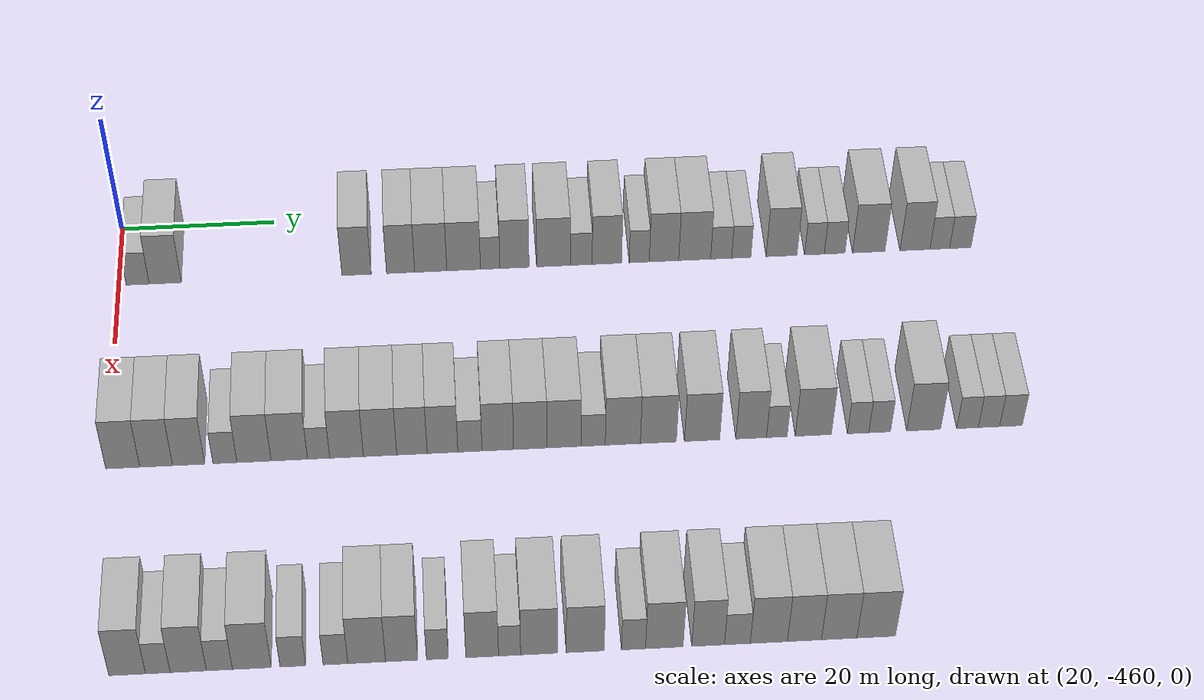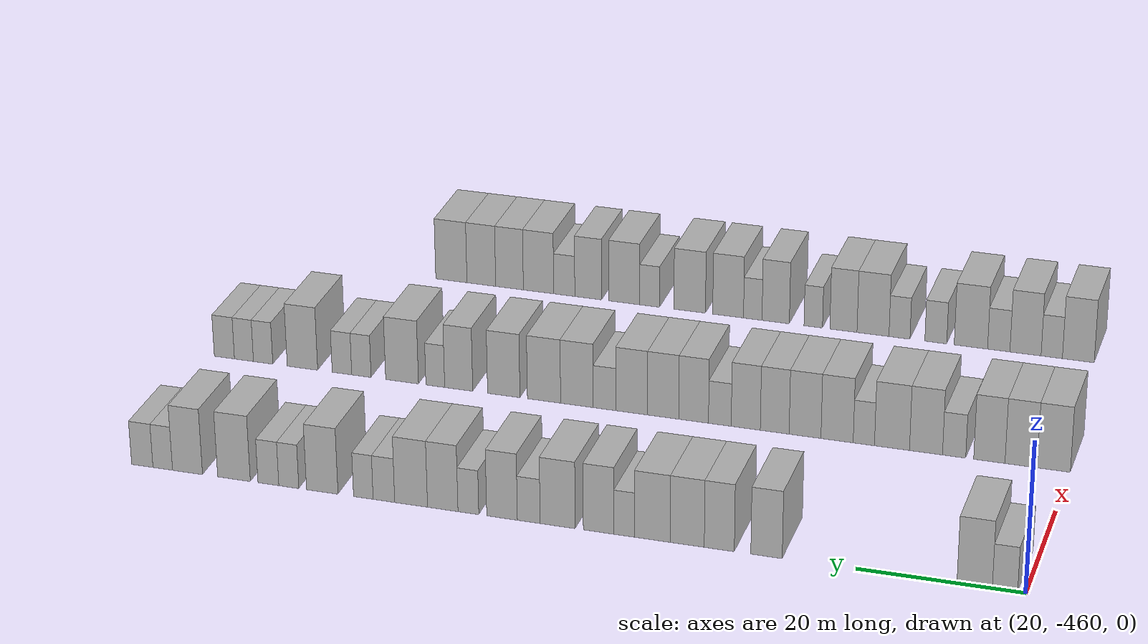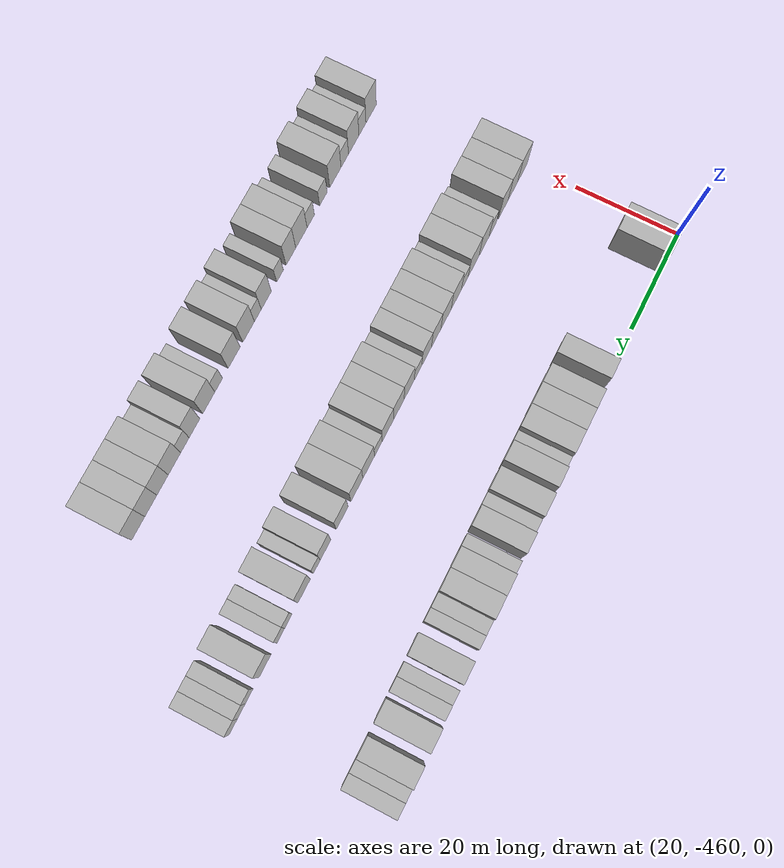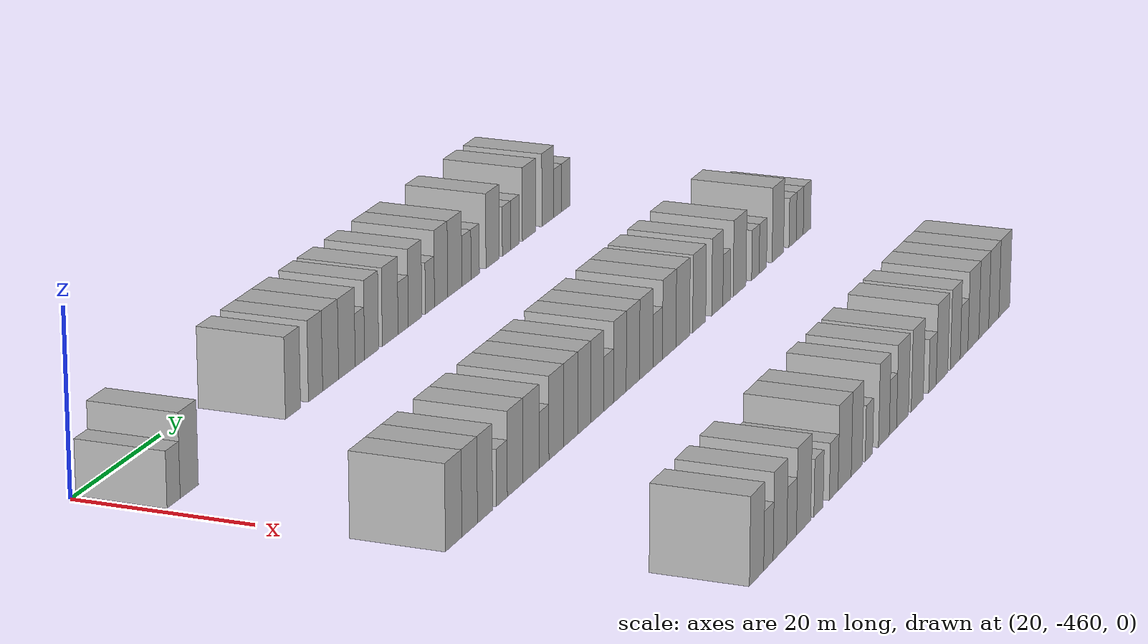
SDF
<sdf version="1.6">
 <world name="default">
  <model name="building_1">
   <static>1</static>
   <pose>25.0000 -457.5203 0 0.000000 0.000000 0.000000</pose>
   <link name="link">
    <pose>0 0 3.00 0 0 0</pose>
    <collision name="collision"><geometry><box><size>10.0000 2.9594 6.0000</size></box></geometry></collision>
    <visual name="visual">
     <cast_shadows>0</cast_shadows>
     <geometry><box><size>10.0000 2.9594 6.0000</size></box></geometry>
     <material>
      <script>
       <uri>model://HANNAS_wall/materials/scripts</uri>
       <uri>model://HANNAS_wall/materials/textures</uri>
       <name>vrc/HANNAS_wall</name>
      </script>
     </material>
    </visual>
   </link>
  </model>
  <model name="building_2">
   <static>1</static>
   <pose>25.0000 -453.9683 0 0.000000 0.000000 0.000000</pose>
   <link name="link">
    <pose>0 0 4.50 0 0 0</pose>
    <collision name="collision"><geometry><box><size>10.0000 4.1446 9.0000</size></box></geometry></collision>
    <visual name="visual">
     <cast_shadows>0</cast_shadows>
     <geometry><box><size>10.0000 4.1446 9.0000</size></box></geometry>
     <material>
      <script>
       <uri>model://HANNAS_wall/materials/scripts</uri>
       <uri>model://HANNAS_wall/materials/textures</uri>
       <name>vrc/HANNAS_wall</name>
      </script>
     </material>
    </visual>
   </link>
  </model>
  <model name="building_3">
   <static>1</static>
   <pose>25.0000 -429.2028 0 0.000000 0.000000 0.000000</pose>
   <link name="link">
    <pose>0 0 4.50 0 0 0</pose>
    <collision name="collision"><geometry><box><size>10.0000 3.7955 9.0000</size></box></geometry></collision>
    <visual name="visual">
     <cast_shadows>0</cast_shadows>
     <geometry><box><size>10.0000 3.7955 9.0000</size></box></geometry>
     <material>
      <script>
       <uri>model://HANNAS_wall/materials/scripts</uri>
       <uri>model://HANNAS_wall/materials/textures</uri>
       <name>vrc/HANNAS_wall</name>
      </script>
     </material>
    </visual>
   </link>
  </model>
  <model name="building_4">
   <static>1</static>
   <pose>25.0000 -423.4766 0 0.000000 0.000000 0.000000</pose>
   <link name="link">
    <pose>0 0 4.50 0 0 0</pose>
    <collision name="collision"><geometry><box><size>10.0000 3.6569 9.0000</size></box></geometry></collision>
    <visual name="visual">
     <cast_shadows>0</cast_shadows>
     <geometry><box><size>10.0000 3.6569 9.0000</size></box></geometry>
     <material>
      <script>
       <uri>model://HANNAS_wall/materials/scripts</uri>
       <uri>model://HANNAS_wall/materials/textures</uri>
       <name>vrc/HANNAS_wall</name>
      </script>
     </material>
    </visual>
   </link>
  </model>
  <model name="building_5">
   <static>1</static>
   <pose>25.0000 -419.5611 0 0.000000 0.000000 0.000000</pose>
   <link name="link">
    <pose>0 0 4.50 0 0 0</pose>
    <collision name="collision"><geometry><box><size>10.0000 4.1742 9.0000</size></box></geometry></collision>
    <visual name="visual">
     <cast_shadows>0</cast_shadows>
     <geometry><box><size>10.0000 4.1742 9.0000</size></box></geometry>
     <material>
      <script>
       <uri>model://HANNAS_wall/materials/scripts</uri>
       <uri>model://HANNAS_wall/materials/textures</uri>
       <name>vrc/HANNAS_wall</name>
      </script>
     </material>
    </visual>
   </link>
  </model>
  <model name="building_6">
   <static>1</static>
   <pose>25.0000 -415.2836 0 0.000000 0.000000 0.000000</pose>
   <link name="link">
    <pose>0 0 4.50 0 0 0</pose>
    <collision name="collision"><geometry><box><size>10.0000 4.3807 9.0000</size></box></geometry></collision>
    <visual name="visual">
     <cast_shadows>0</cast_shadows>
     <geometry><box><size>10.0000 4.3807 9.0000</size></box></geometry>
     <material>
      <script>
       <uri>model://HANNAS_wall/materials/scripts</uri>
       <uri>model://HANNAS_wall/materials/textures</uri>
       <name>vrc/HANNAS_wall</name>
      </script>
     </material>
    </visual>
   </link>
  </model>
  <model name="building_7">
   <static>1</static>
   <pose>25.0000 -411.8322 0 0.000000 0.000000 0.000000</pose>
   <link name="link">
    <pose>0 0 3.00 0 0 0</pose>
    <collision name="collision"><geometry><box><size>10.0000 2.5221 6.0000</size></box></geometry></collision>
    <visual name="visual">
     <cast_shadows>0</cast_shadows>
     <geometry><box><size>10.0000 2.5221 6.0000</size></box></geometry>
     <material>
      <script>
       <uri>model://HANNAS_wall/materials/scripts</uri>
       <uri>model://HANNAS_wall/materials/textures</uri>
       <name>vrc/HANNAS_wall</name>
      </script>
     </material>
    </visual>
   </link>
  </model>
  <model name="building_8">
   <static>1</static>
   <pose>25.0000 -408.6667 0 0.000000 0.000000 0.000000</pose>
   <link name="link">
    <pose>0 0 4.50 0 0 0</pose>
    <collision name="collision"><geometry><box><size>10.0000 3.8089 9.0000</size></box></geometry></collision>
    <visual name="visual">
     <cast_shadows>0</cast_shadows>
     <geometry><box><size>10.0000 3.8089 9.0000</size></box></geometry>
     <material>
      <script>
       <uri>model://HANNAS_wall/materials/scripts</uri>
       <uri>model://HANNAS_wall/materials/textures</uri>
       <name>vrc/HANNAS_wall</name>
      </script>
     </material>
    </visual>
   </link>
  </model>
  <model name="building_9">
   <static>1</static>
   <pose>25.0000 -403.5743 0 0.000000 0.000000 0.000000</pose>
   <link name="link">
    <pose>0 0 4.50 0 0 0</pose>
    <collision name="collision"><geometry><box><size>10.0000 4.3760 9.0000</size></box></geometry></collision>
    <visual name="visual">
     <cast_shadows>0</cast_shadows>
     <geometry><box><size>10.0000 4.3760 9.0000</size></box></geometry>
     <material>
      <script>
       <uri>model://HANNAS_wall/materials/scripts</uri>
       <uri>model://HANNAS_wall/materials/textures</uri>
       <name>vrc/HANNAS_wall</name>
      </script>
     </material>
    </visual>
   </link>
  </model>
  <model name="building_10">
   <static>1</static>
   <pose>25.0000 -399.9592 0 0.000000 0.000000 0.000000</pose>
   <link name="link">
    <pose>0 0 3.00 0 0 0</pose>
    <collision name="collision"><geometry><box><size>10.0000 2.8542 6.0000</size></box></geometry></collision>
    <visual name="visual">
     <cast_shadows>0</cast_shadows>
     <geometry><box><size>10.0000 2.8542 6.0000</size></box></geometry>
     <material>
      <script>
       <uri>model://HANNAS_wall/materials/scripts</uri>
       <uri>model://HANNAS_wall/materials/textures</uri>
       <name>vrc/HANNAS_wall</name>
      </script>
     </material>
    </visual>
   </link>
  </model>
  <model name="building_11">
   <static>1</static>
   <pose>25.0000 -396.6053 0 0.000000 0.000000 0.000000</pose>
   <link name="link">
    <pose>0 0 4.50 0 0 0</pose>
    <collision name="collision"><geometry><box><size>10.0000 3.8536 9.0000</size></box></geometry></collision>
    <visual name="visual">
     <cast_shadows>0</cast_shadows>
     <geometry><box><size>10.0000 3.8536 9.0000</size></box></geometry>
     <material>
      <script>
       <uri>model://HANNAS_wall/materials/scripts</uri>
       <uri>model://HANNAS_wall/materials/textures</uri>
       <name>vrc/HANNAS_wall</name>
      </script>
     </material>
    </visual>
   </link>
  </model>
  <model name="building_12">
   <static>1</static>
   <pose>25.0000 -392.3631 0 0.000000 0.000000 0.000000</pose>
   <link name="link">
    <pose>0 0 3.00 0 0 0</pose>
    <collision name="collision"><geometry><box><size>10.0000 2.6307 6.0000</size></box></geometry></collision>
    <visual name="visual">
     <cast_shadows>0</cast_shadows>
     <geometry><box><size>10.0000 2.6307 6.0000</size></box></geometry>
     <material>
      <script>
       <uri>model://HANNAS_wall/materials/scripts</uri>
       <uri>model://HANNAS_wall/materials/textures</uri>
       <name>vrc/HANNAS_wall</name>
      </script>
     </material>
    </visual>
   </link>
  </model>
  <model name="building_13">
   <static>1</static>
   <pose>25.0000 -389.1165 0 0.000000 0.000000 0.000000</pose>
   <link name="link">
    <pose>0 0 4.50 0 0 0</pose>
    <collision name="collision"><geometry><box><size>10.0000 3.8625 9.0000</size></box></geometry></collision>
    <visual name="visual">
     <cast_shadows>0</cast_shadows>
     <geometry><box><size>10.0000 3.8625 9.0000</size></box></geometry>
     <material>
      <script>
       <uri>model://HANNAS_wall/materials/scripts</uri>
       <uri>model://HANNAS_wall/materials/textures</uri>
       <name>vrc/HANNAS_wall</name>
      </script>
     </material>
    </visual>
   </link>
  </model>
  <model name="building_14">
   <static>1</static>
   <pose>25.0000 -385.0935 0 0.000000 0.000000 0.000000</pose>
   <link name="link">
    <pose>0 0 4.50 0 0 0</pose>
    <collision name="collision"><geometry><box><size>10.0000 4.1836 9.0000</size></box></geometry></collision>
    <visual name="visual">
     <cast_shadows>0</cast_shadows>
     <geometry><box><size>10.0000 4.1836 9.0000</size></box></geometry>
     <material>
      <script>
       <uri>model://HANNAS_wall/materials/scripts</uri>
       <uri>model://HANNAS_wall/materials/textures</uri>
       <name>vrc/HANNAS_wall</name>
      </script>
     </material>
    </visual>
   </link>
  </model>
  <model name="building_15">
   <static>1</static>
   <pose>25.0000 -381.6193 0 0.000000 0.000000 0.000000</pose>
   <link name="link">
    <pose>0 0 3.00 0 0 0</pose>
    <collision name="collision"><geometry><box><size>10.0000 2.7649 6.0000</size></box></geometry></collision>
    <visual name="visual">
     <cast_shadows>0</cast_shadows>
     <geometry><box><size>10.0000 2.7649 6.0000</size></box></geometry>
     <material>
      <script>
       <uri>model://HANNAS_wall/materials/scripts</uri>
       <uri>model://HANNAS_wall/materials/textures</uri>
       <name>vrc/HANNAS_wall</name>
      </script>
     </material>
    </visual>
   </link>
  </model>
  <model name="building_16">
   <static>1</static>
   <pose>25.0000 -378.9802 0 0.000000 0.000000 0.000000</pose>
   <link name="link">
    <pose>0 0 3.00 0 0 0</pose>
    <collision name="collision"><geometry><box><size>10.0000 2.5133 6.0000</size></box></geometry></collision>
    <visual name="visual">
     <cast_shadows>0</cast_shadows>
     <geometry><box><size>10.0000 2.5133 6.0000</size></box></geometry>
     <material>
      <script>
       <uri>model://HANNAS_wall/materials/scripts</uri>
       <uri>model://HANNAS_wall/materials/textures</uri>
       <name>vrc/HANNAS_wall</name>
      </script>
     </material>
    </visual>
   </link>
  </model>
  <model name="building_17">
   <static>1</static>
   <pose>25.0000 -373.6902 0 0.000000 0.000000 0.000000</pose>
   <link name="link">
    <pose>0 0 4.50 0 0 0</pose>
    <collision name="collision"><geometry><box><size>10.0000 4.0668 9.0000</size></box></geometry></collision>
    <visual name="visual">
     <cast_shadows>0</cast_shadows>
     <geometry><box><size>10.0000 4.0668 9.0000</size></box></geometry>
     <material>
      <script>
       <uri>model://HANNAS_wall/materials/scripts</uri>
       <uri>model://HANNAS_wall/materials/textures</uri>
       <name>vrc/HANNAS_wall</name>
      </script>
     </material>
    </visual>
   </link>
  </model>
  <model name="building_18">
   <static>1</static>
   <pose>25.0000 -369.3570 0 0.000000 0.000000 0.000000</pose>
   <link name="link">
    <pose>0 0 3.00 0 0 0</pose>
    <collision name="collision"><geometry><box><size>10.0000 2.5995 6.0000</size></box></geometry></collision>
    <visual name="visual">
     <cast_shadows>0</cast_shadows>
     <geometry><box><size>10.0000 2.5995 6.0000</size></box></geometry>
     <material>
      <script>
       <uri>model://HANNAS_wall/materials/scripts</uri>
       <uri>model://HANNAS_wall/materials/textures</uri>
       <name>vrc/HANNAS_wall</name>
      </script>
     </material>
    </visual>
   </link>
  </model>
  <model name="building_19">
   <static>1</static>
   <pose>25.0000 -366.7014 0 0.000000 0.000000 0.000000</pose>
   <link name="link">
    <pose>0 0 3.00 0 0 0</pose>
    <collision name="collision"><geometry><box><size>10.0000 2.7116 6.0000</size></box></geometry></collision>
    <visual name="visual">
     <cast_shadows>0</cast_shadows>
     <geometry><box><size>10.0000 2.7116 6.0000</size></box></geometry>
     <material>
      <script>
       <uri>model://HANNAS_wall/materials/scripts</uri>
       <uri>model://HANNAS_wall/materials/textures</uri>
       <name>vrc/HANNAS_wall</name>
      </script>
     </material>
    </visual>
   </link>
  </model>
  <model name="building_20">
   <static>1</static>
   <pose>25.0000 -362.2099 0 0.000000 0.000000 0.000000</pose>
   <link name="link">
    <pose>0 0 4.50 0 0 0</pose>
    <collision name="collision"><geometry><box><size>10.0000 4.2715 9.0000</size></box></geometry></collision>
    <visual name="visual">
     <cast_shadows>0</cast_shadows>
     <geometry><box><size>10.0000 4.2715 9.0000</size></box></geometry>
     <material>
      <script>
       <uri>model://HANNAS_wall/materials/scripts</uri>
       <uri>model://HANNAS_wall/materials/textures</uri>
       <name>vrc/HANNAS_wall</name>
      </script>
     </material>
    </visual>
   </link>
  </model>
  <model name="building_21">
   <static>1</static>
   <pose>25.0000 -356.0987 0 0.000000 0.000000 0.000000</pose>
   <link name="link">
    <pose>0 0 4.50 0 0 0</pose>
    <collision name="collision"><geometry><box><size>10.0000 3.9509 9.0000</size></box></geometry></collision>
    <visual name="visual">
     <cast_shadows>0</cast_shadows>
     <geometry><box><size>10.0000 3.9509 9.0000</size></box></geometry>
     <material>
      <script>
       <uri>model://HANNAS_wall/materials/scripts</uri>
       <uri>model://HANNAS_wall/materials/textures</uri>
       <name>vrc/HANNAS_wall</name>
      </script>
     </material>
    </visual>
   </link>
  </model>
  <model name="building_22">
   <static>1</static>
   <pose>25.0000 -352.8264 0 0.000000 0.000000 0.000000</pose>
   <link name="link">
    <pose>0 0 3.00 0 0 0</pose>
    <collision name="collision"><geometry><box><size>10.0000 2.5937 6.0000</size></box></geometry></collision>
    <visual name="visual">
     <cast_shadows>0</cast_shadows>
     <geometry><box><size>10.0000 2.5937 6.0000</size></box></geometry>
     <material>
      <script>
       <uri>model://HANNAS_wall/materials/scripts</uri>
       <uri>model://HANNAS_wall/materials/textures</uri>
       <name>vrc/HANNAS_wall</name>
      </script>
     </material>
    </visual>
   </link>
  </model>
  <model name="building_23">
   <static>1</static>
   <pose>25.0000 -350.1174 0 0.000000 0.000000 0.000000</pose>
   <link name="link">
    <pose>0 0 3.00 0 0 0</pose>
    <collision name="collision"><geometry><box><size>10.0000 2.8245 6.0000</size></box></geometry></collision>
    <visual name="visual">
     <cast_shadows>0</cast_shadows>
     <geometry><box><size>10.0000 2.8245 6.0000</size></box></geometry>
     <material>
      <script>
       <uri>model://HANNAS_wall/materials/scripts</uri>
       <uri>model://HANNAS_wall/materials/textures</uri>
       <name>vrc/HANNAS_wall</name>
      </script>
     </material>
    </visual>
   </link>
  </model>
  <model name="building_220">
   <static>1</static>
   <pose>55.0000 -457.9347 0 0.000000 0.000000 0.000000</pose>
   <link name="link">
    <pose>0 0 4.50 0 0 0</pose>
    <collision name="collision"><geometry><box><size>10.0000 4.1306 9.0000</size></box></geometry></collision>
    <visual name="visual">
     <cast_shadows>0</cast_shadows>
     <geometry><box><size>10.0000 4.1306 9.0000</size></box></geometry>
     <material>
      <script>
       <uri>model://HANNAS_wall/materials/scripts</uri>
       <uri>model://HANNAS_wall/materials/textures</uri>
       <name>vrc/HANNAS_wall</name>
      </script>
     </material>
    </visual>
   </link>
  </model>
  <model name="building_221">
   <static>1</static>
   <pose>55.0000 -453.8771 0 0.000000 0.000000 0.000000</pose>
   <link name="link">
    <pose>0 0 4.50 0 0 0</pose>
    <collision name="collision"><geometry><box><size>10.0000 3.9846 9.0000</size></box></geometry></collision>
    <visual name="visual">
     <cast_shadows>0</cast_shadows>
     <geometry><box><size>10.0000 3.9846 9.0000</size></box></geometry>
     <material>
      <script>
       <uri>model://HANNAS_wall/materials/scripts</uri>
       <uri>model://HANNAS_wall/materials/textures</uri>
       <name>vrc/HANNAS_wall</name>
      </script>
     </material>
    </visual>
   </link>
  </model>
  <model name="building_222">
   <static>1</static>
   <pose>55.0000 -449.9300 0 0.000000 0.000000 0.000000</pose>
   <link name="link">
    <pose>0 0 4.50 0 0 0</pose>
    <collision name="collision"><geometry><box><size>10.0000 3.9096 9.0000</size></box></geometry></collision>
    <visual name="visual">
     <cast_shadows>0</cast_shadows>
     <geometry><box><size>10.0000 3.9096 9.0000</size></box></geometry>
     <material>
      <script>
       <uri>model://HANNAS_wall/materials/scripts</uri>
       <uri>model://HANNAS_wall/materials/textures</uri>
       <name>vrc/HANNAS_wall</name>
      </script>
     </material>
    </visual>
   </link>
  </model>
  <model name="building_223">
   <static>1</static>
   <pose>55.0000 -445.5173 0 0.000000 0.000000 0.000000</pose>
   <link name="link">
    <pose>0 0 3.00 0 0 0</pose>
    <collision name="collision"><geometry><box><size>10.0000 2.9159 6.0000</size></box></geometry></collision>
    <visual name="visual">
     <cast_shadows>0</cast_shadows>
     <geometry><box><size>10.0000 2.9159 6.0000</size></box></geometry>
     <material>
      <script>
       <uri>model://HANNAS_wall/materials/scripts</uri>
       <uri>model://HANNAS_wall/materials/textures</uri>
       <name>vrc/HANNAS_wall</name>
      </script>
     </material>
    </visual>
   </link>
  </model>
  <model name="building_224">
   <static>1</static>
   <pose>55.0000 -441.9774 0 0.000000 0.000000 0.000000</pose>
   <link name="link">
    <pose>0 0 4.50 0 0 0</pose>
    <collision name="collision"><geometry><box><size>10.0000 4.1638 9.0000</size></box></geometry></collision>
    <visual name="visual">
     <cast_shadows>0</cast_shadows>
     <geometry><box><size>10.0000 4.1638 9.0000</size></box></geometry>
     <material>
      <script>
       <uri>model://HANNAS_wall/materials/scripts</uri>
       <uri>model://HANNAS_wall/materials/textures</uri>
       <name>vrc/HANNAS_wall</name>
      </script>
     </material>
    </visual>
   </link>
  </model>
  <model name="building_225">
   <static>1</static>
   <pose>55.0000 -437.6757 0 0.000000 0.000000 0.000000</pose>
   <link name="link">
    <pose>0 0 4.50 0 0 0</pose>
    <collision name="collision"><geometry><box><size>10.0000 4.4396 9.0000</size></box></geometry></collision>
    <visual name="visual">
     <cast_shadows>0</cast_shadows>
     <geometry><box><size>10.0000 4.4396 9.0000</size></box></geometry>
     <material>
      <script>
       <uri>model://HANNAS_wall/materials/scripts</uri>
       <uri>model://HANNAS_wall/materials/textures</uri>
       <name>vrc/HANNAS_wall</name>
      </script>
     </material>
    </visual>
   </link>
  </model>
  <model name="building_226">
   <static>1</static>
   <pose>55.0000 -434.1019 0 0.000000 0.000000 0.000000</pose>
   <link name="link">
    <pose>0 0 3.00 0 0 0</pose>
    <collision name="collision"><geometry><box><size>10.0000 2.7080 6.0000</size></box></geometry></collision>
    <visual name="visual">
     <cast_shadows>0</cast_shadows>
     <geometry><box><size>10.0000 2.7080 6.0000</size></box></geometry>
     <material>
      <script>
       <uri>model://HANNAS_wall/materials/scripts</uri>
       <uri>model://HANNAS_wall/materials/textures</uri>
       <name>vrc/HANNAS_wall</name>
      </script>
     </material>
    </visual>
   </link>
  </model>
  <model name="building_227">
   <static>1</static>
   <pose>55.0000 -430.6881 0 0.000000 0.000000 0.000000</pose>
   <link name="link">
    <pose>0 0 4.50 0 0 0</pose>
    <collision name="collision"><geometry><box><size>10.0000 4.1196 9.0000</size></box></geometry></collision>
    <visual name="visual">
     <cast_shadows>0</cast_shadows>
     <geometry><box><size>10.0000 4.1196 9.0000</size></box></geometry>
     <material>
      <script>
       <uri>model://HANNAS_wall/materials/scripts</uri>
       <uri>model://HANNAS_wall/materials/textures</uri>
       <name>vrc/HANNAS_wall</name>
      </script>
     </material>
    </visual>
   </link>
  </model>
  <model name="building_228">
   <static>1</static>
   <pose>55.0000 -426.5846 0 0.000000 0.000000 0.000000</pose>
   <link name="link">
    <pose>0 0 4.50 0 0 0</pose>
    <collision name="collision"><geometry><box><size>10.0000 4.0872 9.0000</size></box></geometry></collision>
    <visual name="visual">
     <cast_shadows>0</cast_shadows>
     <geometry><box><size>10.0000 4.0872 9.0000</size></box></geometry>
     <material>
      <script>
       <uri>model://HANNAS_wall/materials/scripts</uri>
       <uri>model://HANNAS_wall/materials/textures</uri>
       <name>vrc/HANNAS_wall</name>
      </script>
     </material>
    </visual>
   </link>
  </model>
  <model name="building_229">
   <static>1</static>
   <pose>55.0000 -422.6826 0 0.000000 0.000000 0.000000</pose>
   <link name="link">
    <pose>0 0 4.50 0 0 0</pose>
    <collision name="collision"><geometry><box><size>10.0000 3.7168 9.0000</size></box></geometry></collision>
    <visual name="visual">
     <cast_shadows>0</cast_shadows>
     <geometry><box><size>10.0000 3.7168 9.0000</size></box></geometry>
     <material>
      <script>
       <uri>model://HANNAS_wall/materials/scripts</uri>
       <uri>model://HANNAS_wall/materials/textures</uri>
       <name>vrc/HANNAS_wall</name>
      </script>
     </material>
    </visual>
   </link>
  </model>
  <model name="building_230">
   <static>1</static>
   <pose>55.0000 -418.9441 0 0.000000 0.000000 0.000000</pose>
   <link name="link">
    <pose>0 0 4.50 0 0 0</pose>
    <collision name="collision"><geometry><box><size>10.0000 3.7602 9.0000</size></box></geometry></collision>
    <visual name="visual">
     <cast_shadows>0</cast_shadows>
     <geometry><box><size>10.0000 3.7602 9.0000</size></box></geometry>
     <material>
      <script>
       <uri>model://HANNAS_wall/materials/scripts</uri>
       <uri>model://HANNAS_wall/materials/textures</uri>
       <name>vrc/HANNAS_wall</name>
      </script>
     </material>
    </visual>
   </link>
  </model>
  <model name="building_231">
   <static>1</static>
   <pose>55.0000 -415.5870 0 0.000000 0.000000 0.000000</pose>
   <link name="link">
    <pose>0 0 3.00 0 0 0</pose>
    <collision name="collision"><geometry><box><size>10.0000 2.9541 6.0000</size></box></geometry></collision>
    <visual name="visual">
     <cast_shadows>0</cast_shadows>
     <geometry><box><size>10.0000 2.9541 6.0000</size></box></geometry>
     <material>
      <script>
       <uri>model://HANNAS_wall/materials/scripts</uri>
       <uri>model://HANNAS_wall/materials/textures</uri>
       <name>vrc/HANNAS_wall</name>
      </script>
     </material>
    </visual>
   </link>
  </model>
  <model name="building_232">
   <static>1</static>
   <pose>55.0000 -412.1757 0 0.000000 0.000000 0.000000</pose>
   <link name="link">
    <pose>0 0 4.50 0 0 0</pose>
    <collision name="collision"><geometry><box><size>10.0000 3.8684 9.0000</size></box></geometry></collision>
    <visual name="visual">
     <cast_shadows>0</cast_shadows>
     <geometry><box><size>10.0000 3.8684 9.0000</size></box></geometry>
     <material>
      <script>
       <uri>model://HANNAS_wall/materials/scripts</uri>
       <uri>model://HANNAS_wall/materials/textures</uri>
       <name>vrc/HANNAS_wall</name>
      </script>
     </material>
    </visual>
   </link>
  </model>
  <model name="building_233">
   <static>1</static>
   <pose>55.0000 -408.1939 0 0.000000 0.000000 0.000000</pose>
   <link name="link">
    <pose>0 0 4.50 0 0 0</pose>
    <collision name="collision"><geometry><box><size>10.0000 4.0952 9.0000</size></box></geometry></collision>
    <visual name="visual">
     <cast_shadows>0</cast_shadows>
     <geometry><box><size>10.0000 4.0952 9.0000</size></box></geometry>
     <material>
      <script>
       <uri>model://HANNAS_wall/materials/scripts</uri>
       <uri>model://HANNAS_wall/materials/textures</uri>
       <name>vrc/HANNAS_wall</name>
      </script>
     </material>
    </visual>
   </link>
  </model>
  <model name="building_234">
   <static>1</static>
   <pose>55.0000 -404.0524 0 0.000000 0.000000 0.000000</pose>
   <link name="link">
    <pose>0 0 4.50 0 0 0</pose>
    <collision name="collision"><geometry><box><size>10.0000 4.1877 9.0000</size></box></geometry></collision>
    <visual name="visual">
     <cast_shadows>0</cast_shadows>
     <geometry><box><size>10.0000 4.1877 9.0000</size></box></geometry>
     <material>
      <script>
       <uri>model://HANNAS_wall/materials/scripts</uri>
       <uri>model://HANNAS_wall/materials/textures</uri>
       <name>vrc/HANNAS_wall</name>
      </script>
     </material>
    </visual>
   </link>
  </model>
  <model name="building_235">
   <static>1</static>
   <pose>55.0000 -400.4653 0 0.000000 0.000000 0.000000</pose>
   <link name="link">
    <pose>0 0 3.00 0 0 0</pose>
    <collision name="collision"><geometry><box><size>10.0000 2.9865 6.0000</size></box></geometry></collision>
    <visual name="visual">
     <cast_shadows>0</cast_shadows>
     <geometry><box><size>10.0000 2.9865 6.0000</size></box></geometry>
     <material>
      <script>
       <uri>model://HANNAS_wall/materials/scripts</uri>
       <uri>model://HANNAS_wall/materials/textures</uri>
       <name>vrc/HANNAS_wall</name>
      </script>
     </material>
    </visual>
   </link>
  </model>
  <model name="building_236">
   <static>1</static>
   <pose>55.0000 -396.8069 0 0.000000 0.000000 0.000000</pose>
   <link name="link">
    <pose>0 0 4.50 0 0 0</pose>
    <collision name="collision"><geometry><box><size>10.0000 4.3303 9.0000</size></box></geometry></collision>
    <visual name="visual">
     <cast_shadows>0</cast_shadows>
     <geometry><box><size>10.0000 4.3303 9.0000</size></box></geometry>
     <material>
      <script>
       <uri>model://HANNAS_wall/materials/scripts</uri>
       <uri>model://HANNAS_wall/materials/textures</uri>
       <name>vrc/HANNAS_wall</name>
      </script>
     </material>
    </visual>
   </link>
  </model>
  <model name="building_237">
   <static>1</static>
   <pose>55.0000 -392.4255 0 0.000000 0.000000 0.000000</pose>
   <link name="link">
    <pose>0 0 4.50 0 0 0</pose>
    <collision name="collision"><geometry><box><size>10.0000 4.4325 9.0000</size></box></geometry></collision>
    <visual name="visual">
     <cast_shadows>0</cast_shadows>
     <geometry><box><size>10.0000 4.4325 9.0000</size></box></geometry>
     <material>
      <script>
       <uri>model://HANNAS_wall/materials/scripts</uri>
       <uri>model://HANNAS_wall/materials/textures</uri>
       <name>vrc/HANNAS_wall</name>
      </script>
     </material>
    </visual>
   </link>
  </model>
  <model name="building_238">
   <static>1</static>
   <pose>55.0000 -387.0361 0 0.000000 0.000000 0.000000</pose>
   <link name="link">
    <pose>0 0 4.50 0 0 0</pose>
    <collision name="collision"><geometry><box><size>10.0000 4.3463 9.0000</size></box></geometry></collision>
    <visual name="visual">
     <cast_shadows>0</cast_shadows>
     <geometry><box><size>10.0000 4.3463 9.0000</size></box></geometry>
     <material>
      <script>
       <uri>model://HANNAS_wall/materials/scripts</uri>
       <uri>model://HANNAS_wall/materials/textures</uri>
       <name>vrc/HANNAS_wall</name>
      </script>
     </material>
    </visual>
   </link>
  </model>
  <model name="building_239">
   <static>1</static>
   <pose>55.0000 -380.9660 0 0.000000 0.000000 0.000000</pose>
   <link name="link">
    <pose>0 0 4.50 0 0 0</pose>
    <collision name="collision"><geometry><box><size>10.0000 3.7939 9.0000</size></box></geometry></collision>
    <visual name="visual">
     <cast_shadows>0</cast_shadows>
     <geometry><box><size>10.0000 3.7939 9.0000</size></box></geometry>
     <material>
      <script>
       <uri>model://HANNAS_wall/materials/scripts</uri>
       <uri>model://HANNAS_wall/materials/textures</uri>
       <name>vrc/HANNAS_wall</name>
      </script>
     </material>
    </visual>
   </link>
  </model>
  <model name="building_240">
   <static>1</static>
   <pose>55.0000 -377.7922 0 0.000000 0.000000 0.000000</pose>
   <link name="link">
    <pose>0 0 3.00 0 0 0</pose>
    <collision name="collision"><geometry><box><size>10.0000 2.5537 6.0000</size></box></geometry></collision>
    <visual name="visual">
     <cast_shadows>0</cast_shadows>
     <geometry><box><size>10.0000 2.5537 6.0000</size></box></geometry>
     <material>
      <script>
       <uri>model://HANNAS_wall/materials/scripts</uri>
       <uri>model://HANNAS_wall/materials/textures</uri>
       <name>vrc/HANNAS_wall</name>
      </script>
     </material>
    </visual>
   </link>
  </model>
  <model name="building_241">
   <static>1</static>
   <pose>55.0000 -373.2771 0 0.000000 0.000000 0.000000</pose>
   <link name="link">
    <pose>0 0 4.50 0 0 0</pose>
    <collision name="collision"><geometry><box><size>10.0000 4.4763 9.0000</size></box></geometry></collision>
    <visual name="visual">
     <cast_shadows>0</cast_shadows>
     <geometry><box><size>10.0000 4.4763 9.0000</size></box></geometry>
     <material>
      <script>
       <uri>model://HANNAS_wall/materials/scripts</uri>
       <uri>model://HANNAS_wall/materials/textures</uri>
       <name>vrc/HANNAS_wall</name>
      </script>
     </material>
    </visual>
   </link>
  </model>
  <model name="building_242">
   <static>1</static>
   <pose>55.0000 -367.7118 0 0.000000 0.000000 0.000000</pose>
   <link name="link">
    <pose>0 0 3.00 0 0 0</pose>
    <collision name="collision"><geometry><box><size>10.0000 2.6544 6.0000</size></box></geometry></collision>
    <visual name="visual">
     <cast_shadows>0</cast_shadows>
     <geometry><box><size>10.0000 2.6544 6.0000</size></box></geometry>
     <material>
      <script>
       <uri>model://HANNAS_wall/materials/scripts</uri>
       <uri>model://HANNAS_wall/materials/textures</uri>
       <name>vrc/HANNAS_wall</name>
      </script>
     </material>
    </visual>
   </link>
  </model>
  <model name="building_243">
   <static>1</static>
   <pose>55.0000 -365.0409 0 0.000000 0.000000 0.000000</pose>
   <link name="link">
    <pose>0 0 3.00 0 0 0</pose>
    <collision name="collision"><geometry><box><size>10.0000 2.6874 6.0000</size></box></geometry></collision>
    <visual name="visual">
     <cast_shadows>0</cast_shadows>
     <geometry><box><size>10.0000 2.6874 6.0000</size></box></geometry>
     <material>
      <script>
       <uri>model://HANNAS_wall/materials/scripts</uri>
       <uri>model://HANNAS_wall/materials/textures</uri>
       <name>vrc/HANNAS_wall</name>
      </script>
     </material>
    </visual>
   </link>
  </model>
  <model name="building_244">
   <static>1</static>
   <pose>55.0000 -359.5871 0 0.000000 0.000000 0.000000</pose>
   <link name="link">
    <pose>0 0 4.50 0 0 0</pose>
    <collision name="collision"><geometry><box><size>10.0000 4.2201 9.0000</size></box></geometry></collision>
    <visual name="visual">
     <cast_shadows>0</cast_shadows>
     <geometry><box><size>10.0000 4.2201 9.0000</size></box></geometry>
     <material>
      <script>
       <uri>model://HANNAS_wall/materials/scripts</uri>
       <uri>model://HANNAS_wall/materials/textures</uri>
       <name>vrc/HANNAS_wall</name>
      </script>
     </material>
    </visual>
   </link>
  </model>
  <model name="building_245">
   <static>1</static>
   <pose>55.0000 -354.1279 0 0.000000 0.000000 0.000000</pose>
   <link name="link">
    <pose>0 0 3.00 0 0 0</pose>
    <collision name="collision"><geometry><box><size>10.0000 2.6983 6.0000</size></box></geometry></collision>
    <visual name="visual">
     <cast_shadows>0</cast_shadows>
     <geometry><box><size>10.0000 2.6983 6.0000</size></box></geometry>
     <material>
      <script>
       <uri>model://HANNAS_wall/materials/scripts</uri>
       <uri>model://HANNAS_wall/materials/textures</uri>
       <name>vrc/HANNAS_wall</name>
      </script>
     </material>
    </visual>
   </link>
  </model>
  <model name="building_246">
   <static>1</static>
   <pose>55.0000 -351.4529 0 0.000000 0.000000 0.000000</pose>
   <link name="link">
    <pose>0 0 3.00 0 0 0</pose>
    <collision name="collision"><geometry><box><size>10.0000 2.6517 6.0000</size></box></geometry></collision>
    <visual name="visual">
     <cast_shadows>0</cast_shadows>
     <geometry><box><size>10.0000 2.6517 6.0000</size></box></geometry>
     <material>
      <script>
       <uri>model://HANNAS_wall/materials/scripts</uri>
       <uri>model://HANNAS_wall/materials/textures</uri>
       <name>vrc/HANNAS_wall</name>
      </script>
     </material>
    </visual>
   </link>
  </model>
  <model name="building_247">
   <static>1</static>
   <pose>55.0000 -348.7175 0 0.000000 0.000000 0.000000</pose>
   <link name="link">
    <pose>0 0 3.00 0 0 0</pose>
    <collision name="collision"><geometry><box><size>10.0000 2.8191 6.0000</size></box></geometry></collision>
    <visual name="visual">
     <cast_shadows>0</cast_shadows>
     <geometry><box><size>10.0000 2.8191 6.0000</size></box></geometry>
     <material>
      <script>
       <uri>model://HANNAS_wall/materials/scripts</uri>
       <uri>model://HANNAS_wall/materials/textures</uri>
       <name>vrc/HANNAS_wall</name>
      </script>
     </material>
    </visual>
   </link>
  </model>
  <model name="building_462">
   <static>1</static>
   <pose>85.0000 -455.9127 0 0.000000 0.000000 0.000000</pose>
   <link name="link">
    <pose>0 0 4.50 0 0 0</pose>
    <collision name="collision"><geometry><box><size>10.0000 4.1747 9.0000</size></box></geometry></collision>
    <visual name="visual">
     <cast_shadows>0</cast_shadows>
     <geometry><box><size>10.0000 4.1747 9.0000</size></box></geometry>
     <material>
      <script>
       <uri>model://HANNAS_wall/materials/scripts</uri>
       <uri>model://HANNAS_wall/materials/textures</uri>
       <name>vrc/HANNAS_wall</name>
      </script>
     </material>
    </visual>
   </link>
  </model>
  <model name="building_463">
   <static>1</static>
   <pose>85.0000 -452.4223 0 0.000000 0.000000 0.000000</pose>
   <link name="link">
    <pose>0 0 3.00 0 0 0</pose>
    <collision name="collision"><geometry><box><size>10.0000 2.8061 6.0000</size></box></geometry></collision>
    <visual name="visual">
     <cast_shadows>0</cast_shadows>
     <geometry><box><size>10.0000 2.8061 6.0000</size></box></geometry>
     <material>
      <script>
       <uri>model://HANNAS_wall/materials/scripts</uri>
       <uri>model://HANNAS_wall/materials/textures</uri>
       <name>vrc/HANNAS_wall</name>
      </script>
     </material>
    </visual>
   </link>
  </model>
  <model name="building_464">
   <static>1</static>
   <pose>85.0000 -448.9580 0 0.000000 0.000000 0.000000</pose>
   <link name="link">
    <pose>0 0 4.50 0 0 0</pose>
    <collision name="collision"><geometry><box><size>10.0000 4.1224 9.0000</size></box></geometry></collision>
    <visual name="visual">
     <cast_shadows>0</cast_shadows>
     <geometry><box><size>10.0000 4.1224 9.0000</size></box></geometry>
     <material>
      <script>
       <uri>model://HANNAS_wall/materials/scripts</uri>
       <uri>model://HANNAS_wall/materials/textures</uri>
       <name>vrc/HANNAS_wall</name>
      </script>
     </material>
    </visual>
   </link>
  </model>
  <model name="building_465">
   <static>1</static>
   <pose>85.0000 -445.4118 0 0.000000 0.000000 0.000000</pose>
   <link name="link">
    <pose>0 0 3.00 0 0 0</pose>
    <collision name="collision"><geometry><box><size>10.0000 2.9700 6.0000</size></box></geometry></collision>
    <visual name="visual">
     <cast_shadows>0</cast_shadows>
     <geometry><box><size>10.0000 2.9700 6.0000</size></box></geometry>
     <material>
      <script>
       <uri>model://HANNAS_wall/materials/scripts</uri>
       <uri>model://HANNAS_wall/materials/textures</uri>
       <name>vrc/HANNAS_wall</name>
      </script>
     </material>
    </visual>
   </link>
  </model>
  <model name="building_466">
   <static>1</static>
   <pose>85.0000 -441.7045 0 0.000000 0.000000 0.000000</pose>
   <link name="link">
    <pose>0 0 4.50 0 0 0</pose>
    <collision name="collision"><geometry><box><size>10.0000 4.4445 9.0000</size></box></geometry></collision>
    <visual name="visual">
     <cast_shadows>0</cast_shadows>
     <geometry><box><size>10.0000 4.4445 9.0000</size></box></geometry>
     <material>
      <script>
       <uri>model://HANNAS_wall/materials/scripts</uri>
       <uri>model://HANNAS_wall/materials/textures</uri>
       <name>vrc/HANNAS_wall</name>
      </script>
     </material>
    </visual>
   </link>
  </model>
  <model name="building_467">
   <static>1</static>
   <pose>85.0000 -437.0185 0 0.000000 0.000000 0.000000</pose>
   <link name="link">
    <pose>0 0 3.00 0 0 0</pose>
    <collision name="collision"><geometry><box><size>10.0000 2.9275 6.0000</size></box></geometry></collision>
    <visual name="visual">
     <cast_shadows>0</cast_shadows>
     <geometry><box><size>10.0000 2.9275 6.0000</size></box></geometry>
     <material>
      <script>
       <uri>model://HANNAS_wall/materials/scripts</uri>
       <uri>model://HANNAS_wall/materials/textures</uri>
       <name>vrc/HANNAS_wall</name>
      </script>
     </material>
    </visual>
   </link>
  </model>
  <model name="building_468">
   <static>1</static>
   <pose>85.0000 -432.1395 0 0.000000 0.000000 0.000000</pose>
   <link name="link">
    <pose>0 0 3.00 0 0 0</pose>
    <collision name="collision"><geometry><box><size>10.0000 2.8306 6.0000</size></box></geometry></collision>
    <visual name="visual">
     <cast_shadows>0</cast_shadows>
     <geometry><box><size>10.0000 2.8306 6.0000</size></box></geometry>
     <material>
      <script>
       <uri>model://HANNAS_wall/materials/scripts</uri>
       <uri>model://HANNAS_wall/materials/textures</uri>
       <name>vrc/HANNAS_wall</name>
      </script>
     </material>
    </visual>
   </link>
  </model>
  <model name="building_469">
   <static>1</static>
   <pose>85.0000 -428.5619 0 0.000000 0.000000 0.000000</pose>
   <link name="link">
    <pose>0 0 4.50 0 0 0</pose>
    <collision name="collision"><geometry><box><size>10.0000 4.3246 9.0000</size></box></geometry></collision>
    <visual name="visual">
     <cast_shadows>0</cast_shadows>
     <geometry><box><size>10.0000 4.3246 9.0000</size></box></geometry>
     <material>
      <script>
       <uri>model://HANNAS_wall/materials/scripts</uri>
       <uri>model://HANNAS_wall/materials/textures</uri>
       <name>vrc/HANNAS_wall</name>
      </script>
     </material>
    </visual>
   </link>
  </model>
  <model name="building_470">
   <static>1</static>
   <pose>85.0000 -424.5547 0 0.000000 0.000000 0.000000</pose>
   <link name="link">
    <pose>0 0 4.50 0 0 0</pose>
    <collision name="collision"><geometry><box><size>10.0000 3.6898 9.0000</size></box></geometry></collision>
    <visual name="visual">
     <cast_shadows>0</cast_shadows>
     <geometry><box><size>10.0000 3.6898 9.0000</size></box></geometry>
     <material>
      <script>
       <uri>model://HANNAS_wall/materials/scripts</uri>
       <uri>model://HANNAS_wall/materials/textures</uri>
       <name>vrc/HANNAS_wall</name>
      </script>
     </material>
    </visual>
   </link>
  </model>
  <model name="building_471">
   <static>1</static>
   <pose>85.0000 -420.4496 0 0.000000 0.000000 0.000000</pose>
   <link name="link">
    <pose>0 0 3.00 0 0 0</pose>
    <collision name="collision"><geometry><box><size>10.0000 2.5205 6.0000</size></box></geometry></collision>
    <visual name="visual">
     <cast_shadows>0</cast_shadows>
     <geometry><box><size>10.0000 2.5205 6.0000</size></box></geometry>
     <material>
      <script>
       <uri>model://HANNAS_wall/materials/scripts</uri>
       <uri>model://HANNAS_wall/materials/textures</uri>
       <name>vrc/HANNAS_wall</name>
      </script>
     </material>
    </visual>
   </link>
  </model>
  <model name="building_472">
   <static>1</static>
   <pose>85.0000 -415.3127 0 0.000000 0.000000 0.000000</pose>
   <link name="link">
    <pose>0 0 4.50 0 0 0</pose>
    <collision name="collision"><geometry><box><size>10.0000 3.7532 9.0000</size></box></geometry></collision>
    <visual name="visual">
     <cast_shadows>0</cast_shadows>
     <geometry><box><size>10.0000 3.7532 9.0000</size></box></geometry>
     <material>
      <script>
       <uri>model://HANNAS_wall/materials/scripts</uri>
       <uri>model://HANNAS_wall/materials/textures</uri>
       <name>vrc/HANNAS_wall</name>
      </script>
     </material>
    </visual>
   </link>
  </model>
  <model name="building_473">
   <static>1</static>
   <pose>85.0000 -412.1645 0 0.000000 0.000000 0.000000</pose>
   <link name="link">
    <pose>0 0 3.00 0 0 0</pose>
    <collision name="collision"><geometry><box><size>10.0000 2.5432 6.0000</size></box></geometry></collision>
    <visual name="visual">
     <cast_shadows>0</cast_shadows>
     <geometry><box><size>10.0000 2.5432 6.0000</size></box></geometry>
     <material>
      <script>
       <uri>model://HANNAS_wall/materials/scripts</uri>
       <uri>model://HANNAS_wall/materials/textures</uri>
       <name>vrc/HANNAS_wall</name>
      </script>
     </material>
    </visual>
   </link>
  </model>
  <model name="building_474">
   <static>1</static>
   <pose>85.0000 -408.7657 0 0.000000 0.000000 0.000000</pose>
   <link name="link">
    <pose>0 0 4.50 0 0 0</pose>
    <collision name="collision"><geometry><box><size>10.0000 4.2545 9.0000</size></box></geometry></collision>
    <visual name="visual">
     <cast_shadows>0</cast_shadows>
     <geometry><box><size>10.0000 4.2545 9.0000</size></box></geometry>
     <material>
      <script>
       <uri>model://HANNAS_wall/materials/scripts</uri>
       <uri>model://HANNAS_wall/materials/textures</uri>
       <name>vrc/HANNAS_wall</name>
      </script>
     </material>
    </visual>
   </link>
  </model>
  <model name="building_475">
   <static>1</static>
   <pose>85.0000 -403.4518 0 0.000000 0.000000 0.000000</pose>
   <link name="link">
    <pose>0 0 4.50 0 0 0</pose>
    <collision name="collision"><geometry><box><size>10.0000 4.3732 9.0000</size></box></geometry></collision>
    <visual name="visual">
     <cast_shadows>0</cast_shadows>
     <geometry><box><size>10.0000 4.3732 9.0000</size></box></geometry>
     <material>
      <script>
       <uri>model://HANNAS_wall/materials/scripts</uri>
       <uri>model://HANNAS_wall/materials/textures</uri>
       <name>vrc/HANNAS_wall</name>
      </script>
     </material>
    </visual>
   </link>
  </model>
  <model name="building_476">
   <static>1</static>
   <pose>85.0000 -397.8729 0 0.000000 0.000000 0.000000</pose>
   <link name="link">
    <pose>0 0 3.00 0 0 0</pose>
    <collision name="collision"><geometry><box><size>10.0000 2.7846 6.0000</size></box></geometry></collision>
    <visual name="visual">
     <cast_shadows>0</cast_shadows>
     <geometry><box><size>10.0000 2.7846 6.0000</size></box></geometry>
     <material>
      <script>
       <uri>model://HANNAS_wall/materials/scripts</uri>
       <uri>model://HANNAS_wall/materials/textures</uri>
       <name>vrc/HANNAS_wall</name>
      </script>
     </material>
    </visual>
   </link>
  </model>
  <model name="building_477">
   <static>1</static>
   <pose>85.0000 -394.3098 0 0.000000 0.000000 0.000000</pose>
   <link name="link">
    <pose>0 0 4.50 0 0 0</pose>
    <collision name="collision"><geometry><box><size>10.0000 4.3416 9.0000</size></box></geometry></collision>
    <visual name="visual">
     <cast_shadows>0</cast_shadows>
     <geometry><box><size>10.0000 4.3416 9.0000</size></box></geometry>
     <material>
      <script>
       <uri>model://HANNAS_wall/materials/scripts</uri>
       <uri>model://HANNAS_wall/materials/textures</uri>
       <name>vrc/HANNAS_wall</name>
      </script>
     </material>
    </visual>
   </link>
  </model>
  <model name="building_478">
   <static>1</static>
   <pose>85.0000 -389.2461 0 0.000000 0.000000 0.000000</pose>
   <link name="link">
    <pose>0 0 4.50 0 0 0</pose>
    <collision name="collision"><geometry><box><size>10.0000 3.7858 9.0000</size></box></geometry></collision>
    <visual name="visual">
     <cast_shadows>0</cast_shadows>
     <geometry><box><size>10.0000 3.7858 9.0000</size></box></geometry>
     <material>
      <script>
       <uri>model://HANNAS_wall/materials/scripts</uri>
       <uri>model://HANNAS_wall/materials/textures</uri>
       <name>vrc/HANNAS_wall</name>
      </script>
     </material>
    </visual>
   </link>
  </model>
  <model name="building_479">
   <static>1</static>
   <pose>85.0000 -385.8597 0 0.000000 0.000000 0.000000</pose>
   <link name="link">
    <pose>0 0 3.00 0 0 0</pose>
    <collision name="collision"><geometry><box><size>10.0000 2.9872 6.0000</size></box></geometry></collision>
    <visual name="visual">
     <cast_shadows>0</cast_shadows>
     <geometry><box><size>10.0000 2.9872 6.0000</size></box></geometry>
     <material>
      <script>
       <uri>model://HANNAS_wall/materials/scripts</uri>
       <uri>model://HANNAS_wall/materials/textures</uri>
       <name>vrc/HANNAS_wall</name>
      </script>
     </material>
    </visual>
   </link>
  </model>
  <model name="building_480">
   <static>1</static>
   <pose>85.0000 -382.2086 0 0.000000 0.000000 0.000000</pose>
   <link name="link">
    <pose>0 0 4.50 0 0 0</pose>
    <collision name="collision"><geometry><box><size>10.0000 4.3150 9.0000</size></box></geometry></collision>
    <visual name="visual">
     <cast_shadows>0</cast_shadows>
     <geometry><box><size>10.0000 4.3150 9.0000</size></box></geometry>
     <material>
      <script>
       <uri>model://HANNAS_wall/materials/scripts</uri>
       <uri>model://HANNAS_wall/materials/textures</uri>
       <name>vrc/HANNAS_wall</name>
      </script>
     </material>
    </visual>
   </link>
  </model>
  <model name="building_481">
   <static>1</static>
   <pose>85.0000 -378.0786 0 0.000000 0.000000 0.000000</pose>
   <link name="link">
    <pose>0 0 4.50 0 0 0</pose>
    <collision name="collision"><geometry><box><size>10.0000 3.9451 9.0000</size></box></geometry></collision>
    <visual name="visual">
     <cast_shadows>0</cast_shadows>
     <geometry><box><size>10.0000 3.9451 9.0000</size></box></geometry>
     <material>
      <script>
       <uri>model://HANNAS_wall/materials/scripts</uri>
       <uri>model://HANNAS_wall/materials/textures</uri>
       <name>vrc/HANNAS_wall</name>
      </script>
     </material>
    </visual>
   </link>
  </model>
  <model name="building_482">
   <static>1</static>
   <pose>85.0000 -374.0450 0 0.000000 0.000000 0.000000</pose>
   <link name="link">
    <pose>0 0 4.50 0 0 0</pose>
    <collision name="collision"><geometry><box><size>10.0000 4.1221 9.0000</size></box></geometry></collision>
    <visual name="visual">
     <cast_shadows>0</cast_shadows>
     <geometry><box><size>10.0000 4.1221 9.0000</size></box></geometry>
     <material>
      <script>
       <uri>model://HANNAS_wall/materials/scripts</uri>
       <uri>model://HANNAS_wall/materials/textures</uri>
       <name>vrc/HANNAS_wall</name>
      </script>
     </material>
    </visual>
   </link>
  </model>
  <model name="building_483">
   <static>1</static>
   <pose>85.0000 -369.7401 0 0.000000 0.000000 0.000000</pose>
   <link name="link">
    <pose>0 0 4.50 0 0 0</pose>
    <collision name="collision"><geometry><box><size>10.0000 4.4877 9.0000</size></box></geometry></collision>
    <visual name="visual">
     <cast_shadows>0</cast_shadows>
     <geometry><box><size>10.0000 4.4877 9.0000</size></box></geometry>
     <material>
      <script>
       <uri>model://HANNAS_wall/materials/scripts</uri>
       <uri>model://HANNAS_wall/materials/textures</uri>
       <name>vrc/HANNAS_wall</name>
      </script>
     </material>
    </visual>
   </link>
  </model>
 </world>
</sdf>
